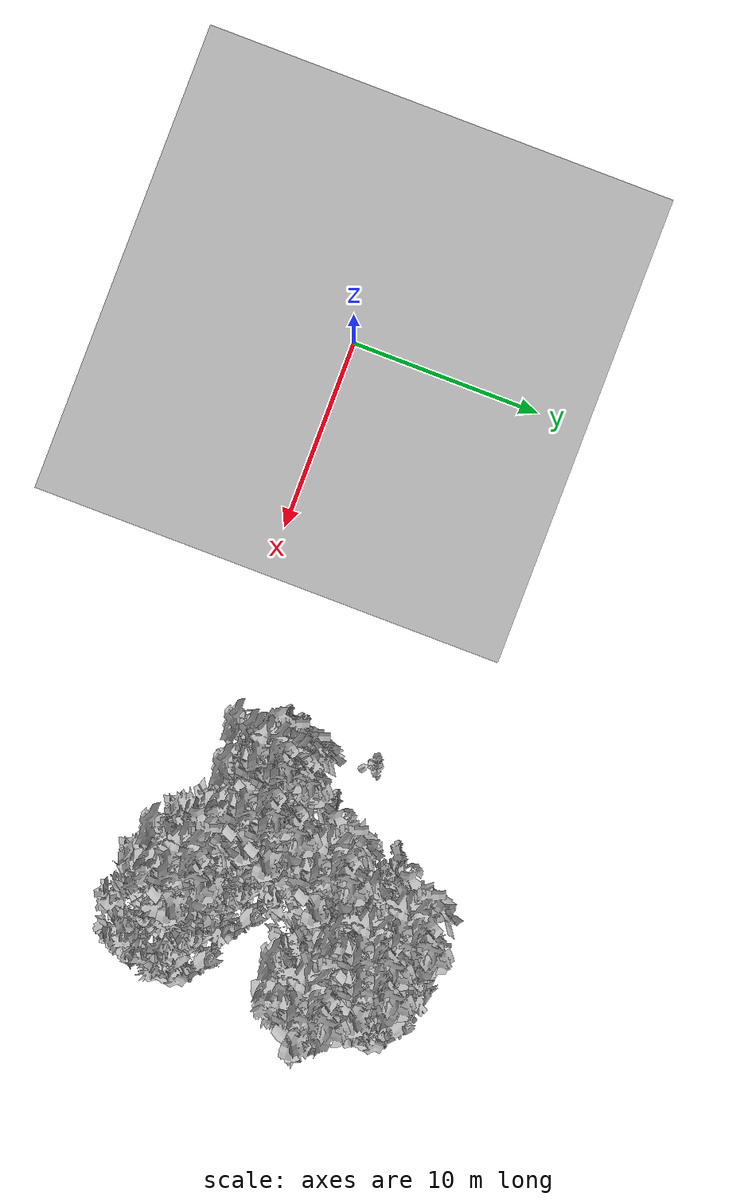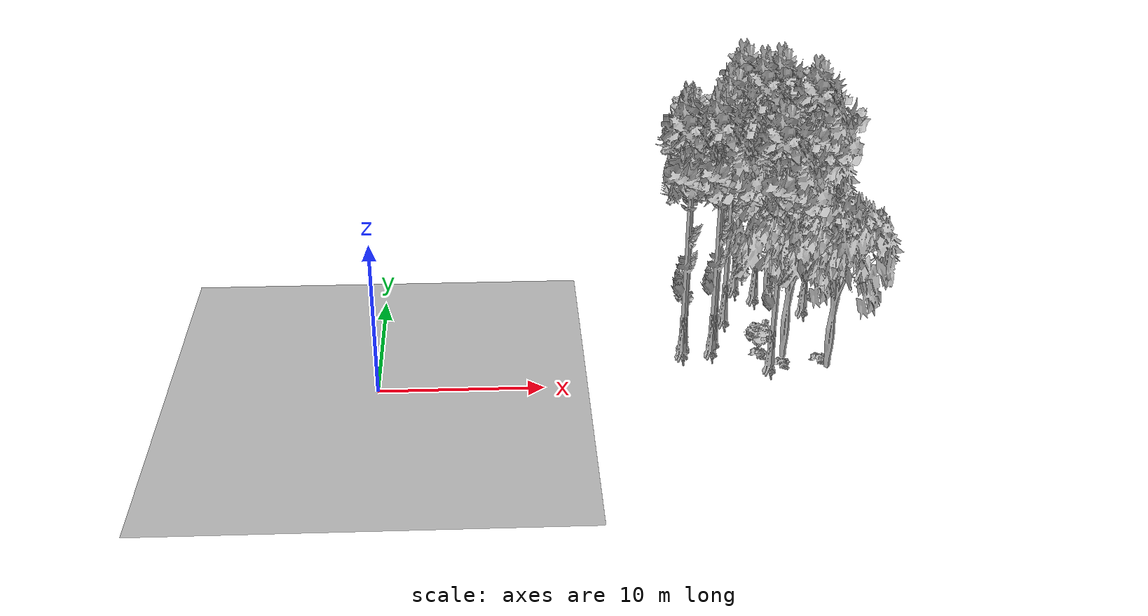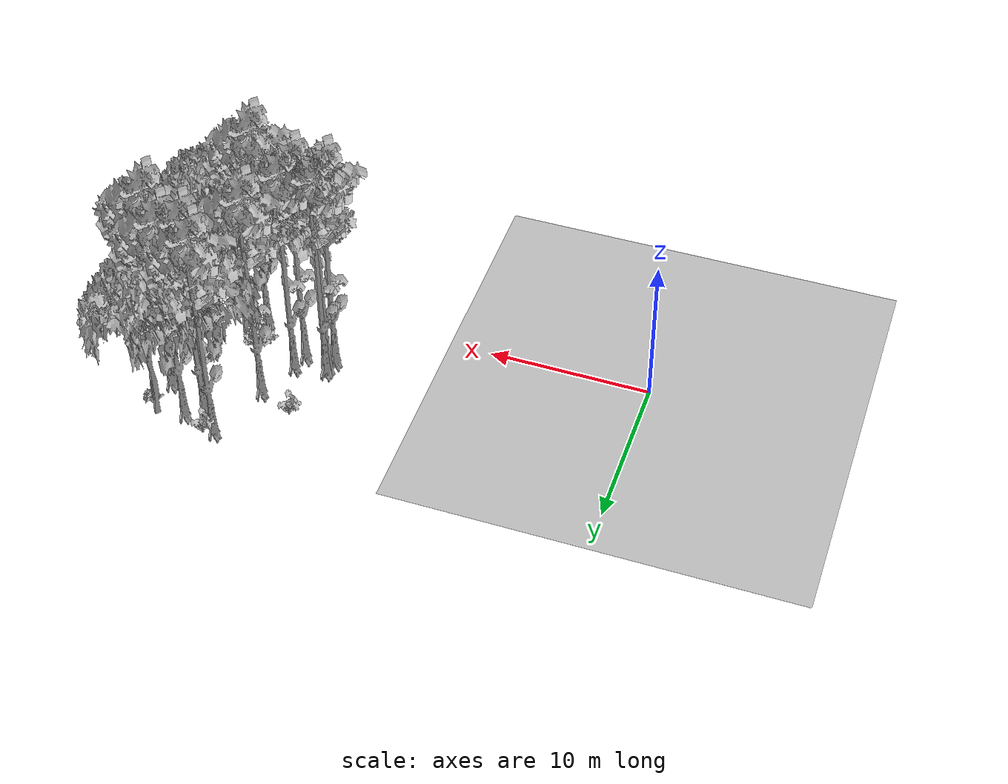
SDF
<sdf version="1.7">
 <world name="default">
  <model name="ground_plane">
   <static>1</static>
   <link name="link">
    <collision name="collision">
     <pose>-50 0 0 0 -0 0</pose>
     <geometry><plane><normal>0 0 1</normal><size>80 80</size></plane></geometry>
     <surface><contact><ode><min_depth>0.01</min_depth><max_vel>0</max_vel></ode></contact></surface>
    </collision>
    <visual name="grass">
     <cast_shadows>0</cast_shadows>
     <geometry>
      <mesh>
       <scale>0.46714285714285714 0.46714285714285714 0.1</scale>
       <uri>file://grass_plane/meshes/grass_plane.dae</uri>
      </mesh>
     </geometry>
    </visual>
   </link>
  </model>
  <model name="Tree 56">
   <static>1</static>
   <pose>25.0235547073421 8.941193245504344 0 1.57079 -0 0</pose>
   <link name="link">
    <collision name="collision">
     <geometry><mesh><scale>3.5 5 3.5</scale><uri>model://tree_2/meshes/tree_2.obj</uri></mesh></geometry>
    </collision>
    <visual name="visual">
     <geometry><mesh><scale>3.5 5 3.5</scale><uri>model://tree_2/meshes/tree_2.obj</uri></mesh></geometry>
    </visual>
   </link>
  </model>
  <model name="Tree 197">
   <static>1</static>
   <pose>18.972415914427664 4.251258562158959 0 1.57079 -0 0</pose>
   <link name="link">
    <collision name="collision">
     <geometry><mesh><scale>3.5 5 3.5</scale><uri>model://tree_9/meshes/tree_9.obj</uri></mesh></geometry>
    </collision>
    <visual name="visual">
     <geometry><mesh><scale>3.5 5 3.5</scale><uri>model://tree_9/meshes/tree_9.obj</uri></mesh></geometry>
    </visual>
   </link>
  </model>
  <model name="Tree 199">
   <static>1</static>
   <pose>22.0074852519867 7.332095594236918 0 1.57079 -0 0</pose>
   <link name="link">
    <collision name="collision">
     <geometry><mesh><scale>3.5 5 3.5</scale><uri>model://tree_9/meshes/tree_9.obj</uri></mesh></geometry>
    </collision>
    <visual name="visual">
     <geometry><mesh><scale>3.5 5 3.5</scale><uri>model://tree_9/meshes/tree_9.obj</uri></mesh></geometry>
    </visual>
   </link>
  </model>
  <model name="Tree 206">
   <static>1</static>
   <pose>24.464622863328266 10.042265827573083 0 1.57079 -0 0</pose>
   <link name="link">
    <collision name="collision">
     <geometry><mesh><scale>3.5 5 3.5</scale><uri>model://tree_9/meshes/tree_9.obj</uri></mesh></geometry>
    </collision>
    <visual name="visual">
     <geometry><mesh><scale>3.5 5 3.5</scale><uri>model://tree_9/meshes/tree_9.obj</uri></mesh></geometry>
    </visual>
   </link>
  </model>
  <model name="Tree 210">
   <static>1</static>
   <pose>25.5805460631274 10.467077878548551 0 1.57079 -0 0</pose>
   <link name="link">
    <collision name="collision">
     <geometry><mesh><scale>3.5 5 3.5</scale><uri>model://tree_9/meshes/tree_9.obj</uri></mesh></geometry>
    </collision>
    <visual name="visual">
     <geometry><mesh><scale>3.5 5 3.5</scale><uri>model://tree_9/meshes/tree_9.obj</uri></mesh></geometry>
    </visual>
   </link>
  </model>
  <model name="Tree 224">
   <static>1</static>
   <pose>20.650935627732174 3.7487127042763575 0 1.57079 -0 0</pose>
   <link name="link">
    <collision name="collision">
     <geometry><mesh><scale>3.5 5 3.5</scale><uri>model://tree_9/meshes/tree_9.obj</uri></mesh></geometry>
    </collision>
    <visual name="visual">
     <geometry><mesh><scale>3.5 5 3.5</scale><uri>model://tree_9/meshes/tree_9.obj</uri></mesh></geometry>
    </visual>
   </link>
  </model>
  <model name="Tree 246">
   <static>1</static>
   <pose>27.0853225363568 10.816787759048943 0 1.57079 -0 0</pose>
   <link name="link">
    <collision name="collision">
     <geometry><mesh><scale>3.5 5 3.5</scale><uri>model://tree_2/meshes/tree_2.obj</uri></mesh></geometry>
    </collision>
    <visual name="visual">
     <geometry><mesh><scale>3.5 5 3.5</scale><uri>model://tree_2/meshes/tree_2.obj</uri></mesh></geometry>
    </visual>
   </link>
  </model>
  <model name="Tree 296">
   <static>1</static>
   <pose>24.91324301974001 2.836640389618111 0 1.57079 -0 0</pose>
   <link name="link">
    <collision name="collision">
     <geometry><mesh><scale>3.5 5 3.5</scale><uri>model://tree_2/meshes/tree_2.obj</uri></mesh></geometry>
    </collision>
    <visual name="visual">
     <geometry><mesh><scale>3.5 5 3.5</scale><uri>model://tree_2/meshes/tree_2.obj</uri></mesh></geometry>
    </visual>
   </link>
  </model>
  <model name="Tree 332">
   <static>1</static>
   <pose>23.34916789370037 11.212005170635308 0 1.57079 -0 0</pose>
   <link name="link">
    <collision name="collision">
     <geometry><mesh><scale>3.5 5 3.5</scale><uri>model://tree_9/meshes/tree_9.obj</uri></mesh></geometry>
    </collision>
    <visual name="visual">
     <geometry><mesh><scale>3.5 5 3.5</scale><uri>model://tree_9/meshes/tree_9.obj</uri></mesh></geometry>
    </visual>
   </link>
  </model>
  <model name="Tree 501">
   <static>1</static>
   <pose>20.95831679110536 4.792334868832427 0 1.57079 -0 0</pose>
   <link name="link">
    <collision name="collision">
     <geometry><mesh><scale>3.5 5 3.5</scale><uri>model://tree_9/meshes/tree_9.obj</uri></mesh></geometry>
    </collision>
    <visual name="visual">
     <geometry><mesh><scale>3.5 5 3.5</scale><uri>model://tree_9/meshes/tree_9.obj</uri></mesh></geometry>
    </visual>
   </link>
  </model>
  <model name="Tree 547">
   <static>1</static>
   <pose>23.996337266216294 1.8109541444223254 0 1.57079 -0 0</pose>
   <link name="link">
    <collision name="collision">
     <geometry><mesh><scale>3.5 5 3.5</scale><uri>model://tree_9/meshes/tree_9.obj</uri></mesh></geometry>
    </collision>
    <visual name="visual">
     <geometry><mesh><scale>3.5 5 3.5</scale><uri>model://tree_9/meshes/tree_9.obj</uri></mesh></geometry>
    </visual>
   </link>
  </model>
  <model name="Tree 571">
   <static>1</static>
   <pose>27.41312663807058 1.6104469007762106 0 1.57079 -0 0</pose>
   <link name="link">
    <collision name="collision">
     <geometry><mesh><scale>3.5 5 3.5</scale><uri>model://tree_2/meshes/tree_2.obj</uri></mesh></geometry>
    </collision>
    <visual name="visual">
     <geometry><mesh><scale>3.5 5 3.5</scale><uri>model://tree_2/meshes/tree_2.obj</uri></mesh></geometry>
    </visual>
   </link>
  </model>
  <model name="Tree 589">
   <static>1</static>
   <pose>27.42087964440759 8.415620303157773 0 1.57079 -0 0</pose>
   <link name="link">
    <collision name="collision">
     <geometry><mesh><scale>3.5 5 3.5</scale><uri>model://tree_9/meshes/tree_9.obj</uri></mesh></geometry>
    </collision>
    <visual name="visual">
     <geometry><mesh><scale>3.5 5 3.5</scale><uri>model://tree_9/meshes/tree_9.obj</uri></mesh></geometry>
    </visual>
   </link>
  </model>
  <model name="Tree 612">
   <static>1</static>
   <pose>18.78365766203421 3.5454774327337972 0 1.57079 -0 0</pose>
   <link name="link">
    <collision name="collision">
     <geometry><mesh><scale>3.5 5 3.5</scale><uri>model://tree_9/meshes/tree_9.obj</uri></mesh></geometry>
    </collision>
    <visual name="visual">
     <geometry><mesh><scale>3.5 5 3.5</scale><uri>model://tree_9/meshes/tree_9.obj</uri></mesh></geometry>
    </visual>
   </link>
  </model>
  <model name="Tree 632">
   <static>1</static>
   <pose>19.00093627778073 4.527347998708812 0 1.57079 -0 0</pose>
   <link name="link">
    <collision name="collision">
     <geometry><mesh><scale>3.5 5 3.5</scale><uri>model://tree_9/meshes/tree_9.obj</uri></mesh></geometry>
    </collision>
    <visual name="visual">
     <geometry><mesh><scale>3.5 5 3.5</scale><uri>model://tree_9/meshes/tree_9.obj</uri></mesh></geometry>
    </visual>
   </link>
  </model>
  <model name="Bush 187">
   <static>1</static>
   <pose>27.136443466754145 2.3025300789596344 0 1.57079 -0 0</pose>
   <link name="link">
    <collision name="collision">
     <geometry><mesh><scale>2 2 2</scale><uri>model://bush_2/meshes/bush_2.obj</uri></mesh></geometry>
     <surface><contact><collide_without_contact>false</collide_without_contact></contact></surface>
    </collision>
    <visual name="visual">
     <geometry><mesh><scale>2 2 2</scale><uri>model://bush_2/meshes/bush_2.obj</uri></mesh></geometry>
    </visual>
   </link>
  </model>
  <model name="Bush 211">
   <static>1</static>
   <pose>24.720113760897533 1.8865884430594804 0 1.57079 -0 0</pose>
   <link name="link">
    <collision name="collision">
     <geometry><mesh><scale>2 2 2</scale><uri>model://bush_2/meshes/bush_2.obj</uri></mesh></geometry>
     <surface><contact><collide_without_contact>false</collide_without_contact></contact></surface>
    </collision>
    <visual name="visual">
     <geometry><mesh><scale>2 2 2</scale><uri>model://bush_2/meshes/bush_2.obj</uri></mesh></geometry>
    </visual>
   </link>
  </model>
  <model name="Bush 220">
   <static>1</static>
   <pose>28.00059744755211 9.783327507539106 0 1.57079 -0 0</pose>
   <link name="link">
    <collision name="collision">
     <geometry><mesh><scale>2 2 2</scale><uri>model://bush_2/meshes/bush_2.obj</uri></mesh></geometry>
     <surface><contact><collide_without_contact>false</collide_without_contact></contact></surface>
    </collision>
    <visual name="visual">
     <geometry><mesh><scale>2 2 2</scale><uri>model://bush_2/meshes/bush_2.obj</uri></mesh></geometry>
    </visual>
   </link>
  </model>
  <model name="Bush 222">
   <static>1</static>
   <pose>23.543537604639035 3.635126665898852 0 1.57079 -0 0</pose>
   <link name="link">
    <collision name="collision">
     <geometry><mesh><scale>2 2 2</scale><uri>model://bush_0/meshes/bush_0.obj</uri></mesh></geometry>
     <surface><contact><collide_without_contact>false</collide_without_contact></contact></surface>
    </collision>
    <visual name="visual">
     <geometry><mesh><scale>2 2 2</scale><uri>model://bush_0/meshes/bush_0.obj</uri></mesh></geometry>
    </visual>
   </link>
  </model>
  <model name="Bush 239">
   <static>1</static>
   <pose>23.947094722052924 11.482497574852047 0 1.57079 -0 0</pose>
   <link name="link">
    <collision name="collision">
     <geometry><mesh><scale>2 2 2</scale><uri>model://bush_0/meshes/bush_0.obj</uri></mesh></geometry>
     <surface><contact><collide_without_contact>false</collide_without_contact></contact></surface>
    </collision>
    <visual name="visual">
     <geometry><mesh><scale>2 2 2</scale><uri>model://bush_0/meshes/bush_0.obj</uri></mesh></geometry>
    </visual>
   </link>
  </model>
  <model name="Bush 443">
   <static>1</static>
   <pose>19.709378154996294 8.546243755033458 0 1.57079 -0 0</pose>
   <link name="link">
    <collision name="collision">
     <geometry><mesh><scale>2 2 2</scale><uri>model://bush_0/meshes/bush_0.obj</uri></mesh></geometry>
     <surface><contact><collide_without_contact>false</collide_without_contact></contact></surface>
    </collision>
    <visual name="visual">
     <geometry><mesh><scale>2 2 2</scale><uri>model://bush_0/meshes/bush_0.obj</uri></mesh></geometry>
    </visual>
   </link>
  </model>
  <model name="Bush 521">
   <static>1</static>
   <pose>23.486750273183276 2.9942987357035236 0 1.57079 -0 0</pose>
   <link name="link">
    <collision name="collision">
     <geometry><mesh><scale>2 2 2</scale><uri>model://bush_2/meshes/bush_2.obj</uri></mesh></geometry>
     <surface><contact><collide_without_contact>false</collide_without_contact></contact></surface>
    </collision>
    <visual name="visual">
     <geometry><mesh><scale>2 2 2</scale><uri>model://bush_2/meshes/bush_2.obj</uri></mesh></geometry>
    </visual>
   </link>
  </model>
  <model name="Bush 561">
   <static>1</static>
   <pose>23.683110582419907 3.775799729078699 0 1.57079 -0 0</pose>
   <link name="link">
    <collision name="collision">
     <geometry><mesh><scale>2 2 2</scale><uri>model://bush_1/meshes/bush_1.obj</uri></mesh></geometry>
     <surface><contact><collide_without_contact>false</collide_without_contact></contact></surface>
    </collision>
    <visual name="visual">
     <geometry><mesh><scale>2 2 2</scale><uri>model://bush_1/meshes/bush_1.obj</uri></mesh></geometry>
    </visual>
   </link>
  </model>
 </world>
</sdf>
